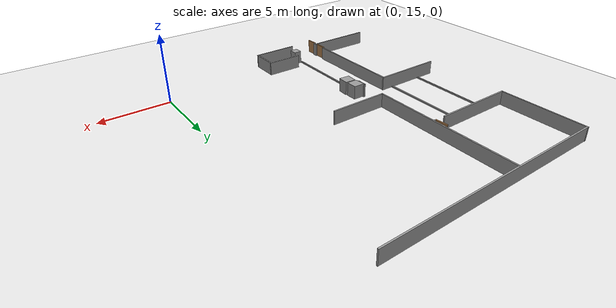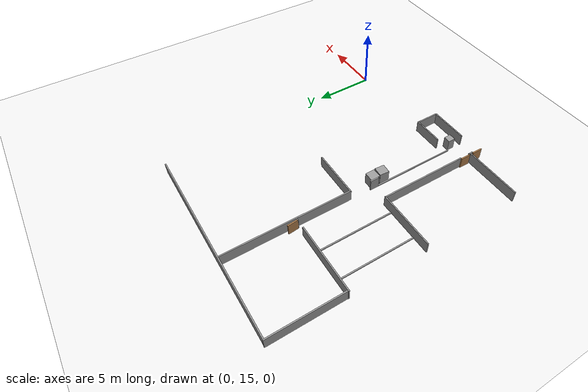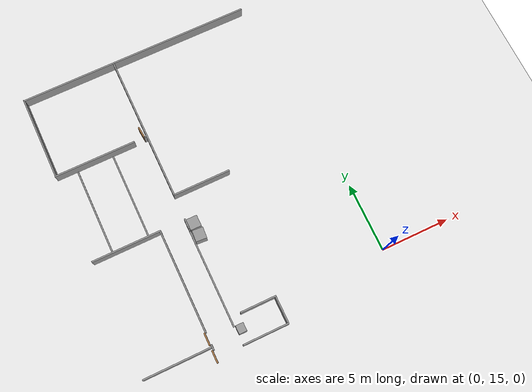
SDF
<sdf version="1.6">
 <world name="default">
  <model name="ground_plane">
   <static>1</static>
   <link name="link">
    <collision name="collision">
     <geometry><plane><normal>0 0 1</normal><size>100 100</size></plane></geometry>
     <surface><friction><ode><mu>100</mu><mu2>50</mu2></ode></friction></surface>
    </collision>
    <visual name="visual">
     <cast_shadows>0</cast_shadows>
     <geometry><plane><normal>0 0 1</normal><size>100 100</size></plane></geometry>
     <material>
      <script><uri>file://media/materials/scripts/gazebo.material</uri><name>Gazebo/WhiteGlow</name></script>
     </material>
    </visual>
   </link>
  </model>
  <model name="L81">
   <link name="link_1">
    <pose>6.1848 40.6724 0.017394 0 -0 0</pose>
    <inertial>
     <mass>0.639519</mass>
     <inertia>
      <ixx>0.0882035</ixx>
      <ixy>0</ixy>
      <ixz>0</ixz>
      <iyy>0.086567</iyy>
      <iyz>0</iyz>
      <izz>0.068184</izz>
     </inertia>
    </inertial>
    <visual name="visual">
     <geometry><box><size>0.790159 0.809357 1</size></box></geometry>
     <material>
      <lighting>1</lighting>
      <script><uri>file://media/materials/scripts/gazebo.material</uri><name>Gazebo/Grey</name></script>
      <shader type="pixel"><normal_map>__default__</normal_map></shader>
      <ambient>0.3 0.3 0.3 1</ambient>
      <diffuse>0.7 0.7 0.7 1</diffuse>
      <specular>0.01 0.01 0.01 1</specular>
      <emissive>0 0 0 1</emissive>
     </material>
    </visual>
    <collision name="collision">
     <geometry><box><size>0.790159 0.809357 1</size></box></geometry>
     <surface>
      <friction>
       <ode><mu>1</mu><mu2>1</mu2><fdir1>0 0 0</fdir1><slip1>0</slip1><slip2>0</slip2></ode>
       <torsional>
        <coefficient>1</coefficient>
        <patch_radius>0</patch_radius>
        <surface_radius>0</surface_radius>
        <use_patch_radius>1</use_patch_radius>
        <ode><slip>0</slip></ode>
       </torsional>
      </friction>
      <bounce><restitution_coefficient>0</restitution_coefficient><threshold>1e+06</threshold></bounce>
      <contact>
       <collide_without_contact>0</collide_without_contact>
       <collide_without_contact_bitmask>1</collide_without_contact_bitmask>
       <collide_bitmask>1</collide_bitmask>
       <ode>
        <soft_cfm>0</soft_cfm>
        <soft_erp>0.2</soft_erp>
        <kp>1e+13</kp>
        <kd>1</kd>
        <max_vel>0.01</max_vel>
        <min_depth>0</min_depth>
       </ode>
       <bullet>
        <split_impulse>1</split_impulse>
        <split_impulse_penetration_threshold>-0.01</split_impulse_penetration_threshold>
        <soft_cfm>0</soft_cfm>
        <soft_erp>0.2</soft_erp>
        <kp>1e+13</kp>
        <kd>1</kd>
       </bullet>
      </contact>
     </surface>
    </collision>
   </link>
   <link name="link_1_clone">
    <pose>6.20714 39.7777 0.017394 -0 -0 -0.068112</pose>
    <inertial>
     <mass>0.639519</mass>
     <inertia>
      <ixx>0.0882035</ixx>
      <ixy>0</ixy>
      <ixz>0</ixz>
      <iyy>0.086567</iyy>
      <iyz>0</iyz>
      <izz>0.068184</izz>
     </inertia>
    </inertial>
    <visual name="visual">
     <geometry><box><size>0.790159 0.809357 1</size></box></geometry>
     <material>
      <lighting>1</lighting>
      <script><uri>file://media/materials/scripts/gazebo.material</uri><name>Gazebo/Grey</name></script>
      <shader type="pixel"><normal_map>__default__</normal_map></shader>
      <ambient>0.3 0.3 0.3 1</ambient>
      <diffuse>0.7 0.7 0.7 1</diffuse>
      <specular>0.01 0.01 0.01 1</specular>
      <emissive>0 0 0 1</emissive>
     </material>
    </visual>
    <collision name="collision">
     <geometry><box><size>0.790159 0.809357 1</size></box></geometry>
     <surface>
      <friction>
       <ode><mu>1</mu><mu2>1</mu2><fdir1>0 0 0</fdir1><slip1>0</slip1><slip2>0</slip2></ode>
       <torsional>
        <coefficient>1</coefficient>
        <patch_radius>0</patch_radius>
        <surface_radius>0</surface_radius>
        <use_patch_radius>1</use_patch_radius>
        <ode><slip>0</slip></ode>
       </torsional>
      </friction>
      <bounce><restitution_coefficient>0</restitution_coefficient><threshold>1e+06</threshold></bounce>
      <contact>
       <collide_without_contact>0</collide_without_contact>
       <collide_without_contact_bitmask>1</collide_without_contact_bitmask>
       <collide_bitmask>1</collide_bitmask>
       <ode>
        <soft_cfm>0</soft_cfm>
        <soft_erp>0.2</soft_erp>
        <kp>1e+13</kp>
        <kd>1</kd>
        <max_vel>0.01</max_vel>
        <min_depth>0</min_depth>
       </ode>
       <bullet>
        <split_impulse>1</split_impulse>
        <split_impulse_penetration_threshold>-0.01</split_impulse_penetration_threshold>
        <soft_cfm>0</soft_cfm>
        <soft_erp>0.2</soft_erp>
        <kp>1e+13</kp>
        <kd>1</kd>
       </bullet>
      </contact>
     </surface>
    </collision>
   </link>
   <link name="link_clone_0_clone_0_clone_2">
    <pose>3.89392 37.3914 -0 0 -0 0</pose>
    <inertial>
     <mass>0.417724</mass>
     <inertia>
      <ixx>1.94639</ixx>
      <ixy>0</ixy>
      <ixz>0</ixz>
      <iyy>0.0351584</iyy>
      <iyz>0</iyz>
      <izz>1.91193</izz>
     </inertia>
    </inertial>
    <visual name="visual">
     <geometry><box><size>0.1 7.41041 1</size></box></geometry>
     <material>
      <script><name>Gazebo/Grey</name><uri>file://media/materials/scripts/gazebo.material</uri></script>
      <shader type="pixel"><normal_map>__default__</normal_map></shader>
      <ambient>0.3 0.3 0.3 1</ambient>
      <diffuse>0.7 0.7 0.7 1</diffuse>
      <specular>0.01 0.01 0.01 1</specular>
      <emissive>0 0 0 1</emissive>
     </material>
    </visual>
    <collision name="collision">
     <geometry><box><size>0.1 7.41041 1</size></box></geometry>
     <surface>
      <friction>
       <ode><mu>1</mu><mu2>1</mu2><fdir1>0 0 0</fdir1><slip1>0</slip1><slip2>0</slip2></ode>
       <torsional>
        <coefficient>1</coefficient>
        <patch_radius>0</patch_radius>
        <surface_radius>0</surface_radius>
        <use_patch_radius>1</use_patch_radius>
        <ode><slip>0</slip></ode>
       </torsional>
      </friction>
      <bounce><restitution_coefficient>0</restitution_coefficient><threshold>1e+06</threshold></bounce>
      <contact>
       <collide_without_contact>0</collide_without_contact>
       <collide_without_contact_bitmask>1</collide_without_contact_bitmask>
       <collide_bitmask>1</collide_bitmask>
       <ode>
        <soft_cfm>0</soft_cfm>
        <soft_erp>0.2</soft_erp>
        <kp>1e+13</kp>
        <kd>1</kd>
        <max_vel>0.01</max_vel>
        <min_depth>0</min_depth>
       </ode>
       <bullet>
        <split_impulse>1</split_impulse>
        <split_impulse_penetration_threshold>-0.01</split_impulse_penetration_threshold>
        <soft_cfm>0</soft_cfm>
        <soft_erp>0.2</soft_erp>
        <kp>1e+13</kp>
        <kd>1</kd>
       </bullet>
      </contact>
     </surface>
    </collision>
   </link>
   <link name="link_clone_0_clone_0_clone_3">
    <pose>3.90051 32.6454 0 0 -0 0</pose>
    <inertial>
     <mass>0.0215676</mass>
     <inertia>
      <ixx>0.0020604</ixx>
      <ixy>0</ixy>
      <ixz>0</ixz>
      <iyy>0.00181527</iyy>
      <iyz>0</iyz>
      <izz>0.000281077</izz>
     </inertia>
    </inertial>
    <visual name="visual">
     <geometry><box><size>0.1 0.382608 1</size></box></geometry>
     <material>
      <script><name>Gazebo/Grey</name><uri>file://media/materials/scripts/gazebo.material</uri></script>
      <shader type="pixel"><normal_map>__default__</normal_map></shader>
      <ambient>0.3 0.3 0.3 1</ambient>
      <diffuse>0.7 0.7 0.7 1</diffuse>
      <specular>0.01 0.01 0.01 1</specular>
      <emissive>0 0 0 1</emissive>
     </material>
    </visual>
    <collision name="collision">
     <geometry><box><size>0.1 0.382608 1</size></box></geometry>
     <surface>
      <friction>
       <ode><mu>1</mu><mu2>1</mu2><fdir1>0 0 0</fdir1><slip1>0</slip1><slip2>0</slip2></ode>
       <torsional>
        <coefficient>1</coefficient>
        <patch_radius>0</patch_radius>
        <surface_radius>0</surface_radius>
        <use_patch_radius>1</use_patch_radius>
        <ode><slip>0</slip></ode>
       </torsional>
      </friction>
      <bounce><restitution_coefficient>0</restitution_coefficient><threshold>1e+06</threshold></bounce>
      <contact>
       <collide_without_contact>0</collide_without_contact>
       <collide_without_contact_bitmask>1</collide_without_contact_bitmask>
       <collide_bitmask>1</collide_bitmask>
       <ode>
        <soft_cfm>0</soft_cfm>
        <soft_erp>0.2</soft_erp>
        <kp>1e+13</kp>
        <kd>1</kd>
        <max_vel>0.01</max_vel>
        <min_depth>0</min_depth>
       </ode>
       <bullet>
        <split_impulse>1</split_impulse>
        <split_impulse_penetration_threshold>-0.01</split_impulse_penetration_threshold>
        <soft_cfm>0</soft_cfm>
        <soft_erp>0.2</soft_erp>
        <kp>1e+13</kp>
        <kd>1</kd>
       </bullet>
      </contact>
     </surface>
    </collision>
   </link>
   <link name="link_clone_0_clone_clone">
    <pose>-1.07086 50.8097 0 0 -0 0</pose>
    <inertial>
     <mass>1</mass>
     <inertia>
      <ixx>0.166667</ixx>
      <ixy>0</ixy>
      <ixz>0</ixz>
      <iyy>0.166667</iyy>
      <iyz>0</iyz>
      <izz>0.166667</izz>
     </inertia>
    </inertial>
    <visual name="visual">
     <geometry><box><size>0.1 6.12 1</size></box></geometry>
     <material>
      <script><name>Gazebo/Grey</name><uri>file://media/materials/scripts/gazebo.material</uri></script>
      <shader type="pixel"><normal_map>__default__</normal_map></shader>
      <ambient>0.3 0.3 0.3 1</ambient>
      <diffuse>0.7 0.7 0.7 1</diffuse>
      <specular>0.01 0.01 0.01 1</specular>
      <emissive>0 0 0 1</emissive>
     </material>
    </visual>
    <collision name="collision">
     <geometry><box><size>0.1 6.12 1</size></box></geometry>
     <surface>
      <friction>
       <ode><mu>1</mu><mu2>1</mu2><fdir1>0 0 0</fdir1><slip1>0</slip1><slip2>0</slip2></ode>
       <torsional>
        <coefficient>1</coefficient>
        <patch_radius>0</patch_radius>
        <surface_radius>0</surface_radius>
        <use_patch_radius>1</use_patch_radius>
        <ode><slip>0</slip></ode>
       </torsional>
      </friction>
      <bounce><restitution_coefficient>0</restitution_coefficient><threshold>1e+06</threshold></bounce>
      <contact>
       <collide_without_contact>0</collide_without_contact>
       <collide_without_contact_bitmask>1</collide_without_contact_bitmask>
       <collide_bitmask>1</collide_bitmask>
       <ode>
        <soft_cfm>0</soft_cfm>
        <soft_erp>0.2</soft_erp>
        <kp>1e+13</kp>
        <kd>1</kd>
        <max_vel>0.01</max_vel>
        <min_depth>0</min_depth>
       </ode>
       <bullet>
        <split_impulse>1</split_impulse>
        <split_impulse_penetration_threshold>-0.01</split_impulse_penetration_threshold>
        <soft_cfm>0</soft_cfm>
        <soft_erp>0.2</soft_erp>
        <kp>1e+13</kp>
        <kd>1</kd>
       </bullet>
      </contact>
     </surface>
    </collision>
   </link>
   <link name="link_clone_0_clone_clone_0">
    <pose>5.76701 48.3737 -0 0 -0 0</pose>
    <inertial>
     <mass>1</mass>
     <inertia>
      <ixx>0.166667</ixx>
      <ixy>0</ixy>
      <ixz>0</ixz>
      <iyy>0.166667</iyy>
      <iyz>0</iyz>
      <izz>0.166667</izz>
     </inertia>
    </inertial>
    <visual name="visual">
     <geometry><box><size>0.1 10.82 1</size></box></geometry>
     <material>
      <script><name>Gazebo/Grey</name><uri>file://media/materials/scripts/gazebo.material</uri></script>
      <shader type="pixel"><normal_map>__default__</normal_map></shader>
      <ambient>0.3 0.3 0.3 1</ambient>
      <diffuse>0.7 0.7 0.7 1</diffuse>
      <specular>0.01 0.01 0.01 1</specular>
      <emissive>0 0 0 1</emissive>
     </material>
    </visual>
    <collision name="collision">
     <geometry><box><size>0.1 10.82 1</size></box></geometry>
     <surface>
      <friction>
       <ode><mu>1</mu><mu2>1</mu2><fdir1>0 0 0</fdir1><slip1>0</slip1><slip2>0</slip2></ode>
       <torsional>
        <coefficient>1</coefficient>
        <patch_radius>0</patch_radius>
        <surface_radius>0</surface_radius>
        <use_patch_radius>1</use_patch_radius>
        <ode><slip>0</slip></ode>
       </torsional>
      </friction>
      <bounce><restitution_coefficient>0</restitution_coefficient><threshold>1e+06</threshold></bounce>
      <contact>
       <collide_without_contact>0</collide_without_contact>
       <collide_without_contact_bitmask>1</collide_without_contact_bitmask>
       <collide_bitmask>1</collide_bitmask>
       <ode>
        <soft_cfm>0</soft_cfm>
        <soft_erp>0.2</soft_erp>
        <kp>1e+13</kp>
        <kd>1</kd>
        <max_vel>0.01</max_vel>
        <min_depth>0</min_depth>
       </ode>
       <bullet>
        <split_impulse>1</split_impulse>
        <split_impulse_penetration_threshold>-0.01</split_impulse_penetration_threshold>
        <soft_cfm>0</soft_cfm>
        <soft_erp>0.2</soft_erp>
        <kp>1e+13</kp>
        <kd>1</kd>
       </bullet>
      </contact>
     </surface>
    </collision>
   </link>
   <link name="link_clone_0_clone_clone_0_clone_clone_clone_1_clone_0_clone_0">
    <pose>5.73871 40.8124 0 0 -0 0</pose>
    <inertial>
     <mass>0.262825</mass>
     <inertia>
      <ixx>0.0337428</ixx>
      <ixy>0</ixy>
      <ixz>0</ixz>
      <iyy>0.0221211</iyy>
      <iyz>0</iyz>
      <izz>0.0120597</izz>
     </inertia>
    </inertial>
    <visual name="visual">
     <geometry><box><size>0.1 0.735267 1</size></box></geometry>
     <material>
      <script><name>Gazebo/Grey</name><uri>file://media/materials/scripts/gazebo.material</uri></script>
      <shader type="pixel"><normal_map>__default__</normal_map></shader>
      <ambient>0.3 0.3 0.3 1</ambient>
      <diffuse>0.7 0.7 0.7 1</diffuse>
      <specular>0.01 0.01 0.01 1</specular>
      <emissive>0 0 0 1</emissive>
     </material>
    </visual>
    <collision name="collision">
     <geometry><box><size>0.1 0.735267 1</size></box></geometry>
     <surface>
      <friction>
       <ode><mu>1</mu><mu2>1</mu2><fdir1>0 0 0</fdir1><slip1>0</slip1><slip2>0</slip2></ode>
       <torsional>
        <coefficient>1</coefficient>
        <patch_radius>0</patch_radius>
        <surface_radius>0</surface_radius>
        <use_patch_radius>1</use_patch_radius>
        <ode><slip>0</slip></ode>
       </torsional>
      </friction>
      <bounce><restitution_coefficient>0</restitution_coefficient><threshold>1e+06</threshold></bounce>
      <contact>
       <collide_without_contact>0</collide_without_contact>
       <collide_without_contact_bitmask>1</collide_without_contact_bitmask>
       <collide_bitmask>1</collide_bitmask>
       <ode>
        <soft_cfm>0</soft_cfm>
        <soft_erp>0.2</soft_erp>
        <kp>1e+13</kp>
        <kd>1</kd>
        <max_vel>0.01</max_vel>
        <min_depth>0</min_depth>
       </ode>
       <bullet>
        <split_impulse>1</split_impulse>
        <split_impulse_penetration_threshold>-0.01</split_impulse_penetration_threshold>
        <soft_cfm>0</soft_cfm>
        <soft_erp>0.2</soft_erp>
        <kp>1e+13</kp>
        <kd>1</kd>
       </bullet>
      </contact>
     </surface>
    </collision>
   </link>
   <link name="link_clone_0_clone_clone_0_clone_clone_clone_1_clone_0_clone_clone_clone">
    <pose>5.73673 36.8477 -0.459597 0 -0 0</pose>
    <inertial>
     <mass>2.56764</mass>
     <inertia><ixx>11.2543</ixx><ixy>0</ixy><ixz>0</ixz><iyy>0.21611</iyy><iyz>0</iyz><izz>11.0424</izz></inertia>
    </inertial>
    <visual name="visual">
     <geometry><box><size>0.1 7.18313 0.1</size></box></geometry>
     <material>
      <script><name>Gazebo/Grey</name><uri>file://media/materials/scripts/gazebo.material</uri></script>
      <shader type="pixel"><normal_map>__default__</normal_map></shader>
      <ambient>0.3 0.3 0.3 1</ambient>
      <diffuse>0.7 0.7 0.7 1</diffuse>
      <specular>0.01 0.01 0.01 1</specular>
      <emissive>0 0 0 1</emissive>
     </material>
    </visual>
    <collision name="collision">
     <geometry><box><size>0.1 7.18313 0.1</size></box></geometry>
     <surface>
      <friction>
       <ode><mu>1</mu><mu2>1</mu2><fdir1>0 0 0</fdir1><slip1>0</slip1><slip2>0</slip2></ode>
       <torsional>
        <coefficient>1</coefficient>
        <patch_radius>0</patch_radius>
        <surface_radius>0</surface_radius>
        <use_patch_radius>1</use_patch_radius>
        <ode><slip>0</slip></ode>
       </torsional>
      </friction>
      <bounce><restitution_coefficient>0</restitution_coefficient><threshold>1e+06</threshold></bounce>
      <contact>
       <collide_without_contact>0</collide_without_contact>
       <collide_without_contact_bitmask>1</collide_without_contact_bitmask>
       <collide_bitmask>1</collide_bitmask>
       <ode>
        <soft_cfm>0</soft_cfm>
        <soft_erp>0.2</soft_erp>
        <kp>1e+13</kp>
        <kd>1</kd>
        <max_vel>0.01</max_vel>
        <min_depth>0</min_depth>
       </ode>
       <bullet>
        <split_impulse>1</split_impulse>
        <split_impulse_penetration_threshold>-0.01</split_impulse_penetration_threshold>
        <soft_cfm>0</soft_cfm>
        <soft_erp>0.2</soft_erp>
        <kp>1e+13</kp>
        <kd>1</kd>
       </bullet>
      </contact>
     </surface>
    </collision>
   </link>
   <link name="link_clone_0_clone_clone_0_clone_clone_clone_1_clone_0_clone_clone_clone_0">
    <pose>3.02058 44.4084 -0.453071 0 -0 0</pose>
    <inertial>
     <mass>2.31092</mass>
     <inertia><ixx>8.24145</ixx><ixy>0</ixy><ixz>0</ixz><iyy>0.194503</iyy><iyz>0</iyz><izz>8.0508</izz></inertia>
    </inertial>
    <visual name="visual">
     <geometry><box><size>0.1 6.46495 0.1</size></box></geometry>
     <material>
      <script><name>Gazebo/Grey</name><uri>file://media/materials/scripts/gazebo.material</uri></script>
      <shader type="pixel"><normal_map>__default__</normal_map></shader>
      <ambient>0.3 0.3 0.3 1</ambient>
      <diffuse>0.7 0.7 0.7 1</diffuse>
      <specular>0.01 0.01 0.01 1</specular>
      <emissive>0 0 0 1</emissive>
     </material>
    </visual>
    <collision name="collision">
     <geometry><box><size>0.1 6.46495 0.1</size></box></geometry>
     <surface>
      <friction>
       <ode><mu>1</mu><mu2>1</mu2><fdir1>0 0 0</fdir1><slip1>0</slip1><slip2>0</slip2></ode>
       <torsional>
        <coefficient>1</coefficient>
        <patch_radius>0</patch_radius>
        <surface_radius>0</surface_radius>
        <use_patch_radius>1</use_patch_radius>
        <ode><slip>0</slip></ode>
       </torsional>
      </friction>
      <bounce><restitution_coefficient>0</restitution_coefficient><threshold>1e+06</threshold></bounce>
      <contact>
       <collide_without_contact>0</collide_without_contact>
       <collide_without_contact_bitmask>1</collide_without_contact_bitmask>
       <collide_bitmask>1</collide_bitmask>
       <ode>
        <soft_cfm>0</soft_cfm>
        <soft_erp>0.2</soft_erp>
        <kp>1e+13</kp>
        <kd>1</kd>
        <max_vel>0.01</max_vel>
        <min_depth>0</min_depth>
       </ode>
       <bullet>
        <split_impulse>1</split_impulse>
        <split_impulse_penetration_threshold>-0.01</split_impulse_penetration_threshold>
        <soft_cfm>0</soft_cfm>
        <soft_erp>0.2</soft_erp>
        <kp>1e+13</kp>
        <kd>1</kd>
       </bullet>
      </contact>
     </surface>
    </collision>
   </link>
   <link name="link_clone_0_clone_clone_0_clone_clone_clone_1_clone_0_clone_clone_clone_0_clone">
    <pose>0.350616 44.4083 -0.455154 0 -0 0</pose>
    <inertial>
     <mass>2.31092</mass>
     <inertia><ixx>8.24145</ixx><ixy>0</ixy><ixz>0</ixz><iyy>0.194503</iyy><iyz>0</iyz><izz>8.0508</izz></inertia>
    </inertial>
    <visual name="visual">
     <geometry><box><size>0.1 6.46495 0.1</size></box></geometry>
     <material>
      <script><name>Gazebo/Grey</name><uri>file://media/materials/scripts/gazebo.material</uri></script>
      <shader type="pixel"><normal_map>__default__</normal_map></shader>
      <ambient>0.3 0.3 0.3 1</ambient>
      <diffuse>0.7 0.7 0.7 1</diffuse>
      <specular>0.01 0.01 0.01 1</specular>
      <emissive>0 0 0 1</emissive>
     </material>
    </visual>
    <collision name="collision">
     <geometry><box><size>0.1 6.46495 0.1</size></box></geometry>
     <surface>
      <friction>
       <ode><mu>1</mu><mu2>1</mu2><fdir1>0 0 0</fdir1><slip1>0</slip1><slip2>0</slip2></ode>
       <torsional>
        <coefficient>1</coefficient>
        <patch_radius>0</patch_radius>
        <surface_radius>0</surface_radius>
        <use_patch_radius>1</use_patch_radius>
        <ode><slip>0</slip></ode>
       </torsional>
      </friction>
      <bounce><restitution_coefficient>0</restitution_coefficient><threshold>1e+06</threshold></bounce>
      <contact>
       <collide_without_contact>0</collide_without_contact>
       <collide_without_contact_bitmask>1</collide_without_contact_bitmask>
       <collide_bitmask>1</collide_bitmask>
       <ode>
        <soft_cfm>0</soft_cfm>
        <soft_erp>0.2</soft_erp>
        <kp>1e+13</kp>
        <kd>1</kd>
        <max_vel>0.01</max_vel>
        <min_depth>0</min_depth>
       </ode>
       <bullet>
        <split_impulse>1</split_impulse>
        <split_impulse_penetration_threshold>-0.01</split_impulse_penetration_threshold>
        <soft_cfm>0</soft_cfm>
        <soft_erp>0.2</soft_erp>
        <kp>1e+13</kp>
        <kd>1</kd>
       </bullet>
      </contact>
     </surface>
    </collision>
   </link>
   <link name="link_clone_0_clone_clone_0_clone_clone_clone_1_clone_1_clone_clone_clone_clone">
    <pose>9.0385 32.9029 0 0 -0 0</pose>
    <inertial>
     <mass>0.280797</mass>
     <inertia>
      <ixx>0.103765</ixx>
      <ixy>0</ixy>
      <ixz>0</ixz>
      <iyy>0.0236337</iyy>
      <iyz>0</iyz>
      <izz>0.0805993</izz>
     </inertia>
    </inertial>
    <visual name="visual">
     <geometry><box><size>0.1 1.85323 1</size></box></geometry>
     <material>
      <script><name>Gazebo/Grey</name><uri>file://media/materials/scripts/gazebo.material</uri></script>
      <shader type="pixel"><normal_map>__default__</normal_map></shader>
      <ambient>0.3 0.3 0.3 1</ambient>
      <diffuse>0.7 0.7 0.7 1</diffuse>
      <specular>0.01 0.01 0.01 1</specular>
      <emissive>0 0 0 1</emissive>
     </material>
    </visual>
    <collision name="collision">
     <geometry><box><size>0.1 1.85323 1</size></box></geometry>
     <surface>
      <friction>
       <ode><mu>1</mu><mu2>1</mu2><fdir1>0 0 0</fdir1><slip1>0</slip1><slip2>0</slip2></ode>
       <torsional>
        <coefficient>1</coefficient>
        <patch_radius>0</patch_radius>
        <surface_radius>0</surface_radius>
        <use_patch_radius>1</use_patch_radius>
        <ode><slip>0</slip></ode>
       </torsional>
      </friction>
      <bounce><restitution_coefficient>0</restitution_coefficient><threshold>1e+06</threshold></bounce>
      <contact>
       <collide_without_contact>0</collide_without_contact>
       <collide_without_contact_bitmask>1</collide_without_contact_bitmask>
       <collide_bitmask>1</collide_bitmask>
       <ode>
        <soft_cfm>0</soft_cfm>
        <soft_erp>0.2</soft_erp>
        <kp>1e+13</kp>
        <kd>1</kd>
        <max_vel>0.01</max_vel>
        <min_depth>0</min_depth>
       </ode>
       <bullet>
        <split_impulse>1</split_impulse>
        <split_impulse_penetration_threshold>-0.01</split_impulse_penetration_threshold>
        <soft_cfm>0</soft_cfm>
        <soft_erp>0.2</soft_erp>
        <kp>1e+13</kp>
        <kd>1</kd>
       </bullet>
      </contact>
     </surface>
    </collision>
   </link>
   <link name="link_clone_0_clone_clone_0_clone_clone_clone_2_clone">
    <pose>3.79519 32.0379 -0 0 -0 0</pose>
    <inertial>
     <mass>1.01517</mass>
     <inertia><ixx>5.4708</ixx><ixy>0</ixy><ixz>0</ixz><iyy>0.0854436</iyy><iyz>0</iyz><izz>5.38705</izz></inertia>
    </inertial>
    <visual name="visual">
     <geometry><box><size>0.1 0.87 1</size></box></geometry>
     <material>
      <script><name>Gazebo/Wood</name><uri>file://media/materials/scripts/gazebo.material</uri></script>
      <shader type="pixel"><normal_map>__default__</normal_map></shader>
      <ambient>0.3 0.3 0.3 1</ambient>
      <diffuse>0.7 0.7 0.7 1</diffuse>
      <specular>0.01 0.01 0.01 1</specular>
      <emissive>0 0 0 1</emissive>
     </material>
    </visual>
    <collision name="collision">
     <geometry><box><size>0.1 0.87 1</size></box></geometry>
     <surface>
      <friction>
       <ode><mu>1</mu><mu2>1</mu2><fdir1>0 0 0</fdir1><slip1>0</slip1><slip2>0</slip2></ode>
       <torsional>
        <coefficient>1</coefficient>
        <patch_radius>0</patch_radius>
        <surface_radius>0</surface_radius>
        <use_patch_radius>1</use_patch_radius>
        <ode><slip>0</slip></ode>
       </torsional>
      </friction>
      <bounce><restitution_coefficient>0</restitution_coefficient><threshold>1e+06</threshold></bounce>
      <contact>
       <collide_without_contact>0</collide_without_contact>
       <collide_without_contact_bitmask>1</collide_without_contact_bitmask>
       <collide_bitmask>1</collide_bitmask>
       <ode>
        <soft_cfm>0</soft_cfm>
        <soft_erp>0.2</soft_erp>
        <kp>1e+13</kp>
        <kd>1</kd>
        <max_vel>0.01</max_vel>
        <min_depth>0</min_depth>
       </ode>
       <bullet>
        <split_impulse>1</split_impulse>
        <split_impulse_penetration_threshold>-0.01</split_impulse_penetration_threshold>
        <soft_cfm>0</soft_cfm>
        <soft_erp>0.2</soft_erp>
        <kp>1e+13</kp>
        <kd>1</kd>
       </bullet>
      </contact>
     </surface>
    </collision>
   </link>
   <link name="link_clone_0_clone_clone_0_clone_clone_clone_2_clone_clone">
    <pose>3.7954 33.2651 -0 0 -0 0</pose>
    <inertial>
     <mass>1.01517</mass>
     <inertia><ixx>5.4708</ixx><ixy>0</ixy><ixz>0</ixz><iyy>0.0854436</iyy><iyz>0</iyz><izz>5.38705</izz></inertia>
    </inertial>
    <visual name="visual">
     <geometry><box><size>0.1 0.87 1</size></box></geometry>
     <material>
      <script><name>Gazebo/Wood</name><uri>file://media/materials/scripts/gazebo.material</uri></script>
      <shader type="pixel"><normal_map>__default__</normal_map></shader>
      <ambient>0.3 0.3 0.3 1</ambient>
      <diffuse>0.7 0.7 0.7 1</diffuse>
      <specular>0.01 0.01 0.01 1</specular>
      <emissive>0 0 0 1</emissive>
     </material>
    </visual>
    <collision name="collision">
     <geometry><box><size>0.1 0.87 1</size></box></geometry>
     <surface>
      <friction>
       <ode><mu>1</mu><mu2>1</mu2><fdir1>0 0 0</fdir1><slip1>0</slip1><slip2>0</slip2></ode>
       <torsional>
        <coefficient>1</coefficient>
        <patch_radius>0</patch_radius>
        <surface_radius>0</surface_radius>
        <use_patch_radius>1</use_patch_radius>
        <ode><slip>0</slip></ode>
       </torsional>
      </friction>
      <bounce><restitution_coefficient>0</restitution_coefficient><threshold>1e+06</threshold></bounce>
      <contact>
       <collide_without_contact>0</collide_without_contact>
       <collide_without_contact_bitmask>1</collide_without_contact_bitmask>
       <collide_bitmask>1</collide_bitmask>
       <ode>
        <soft_cfm>0</soft_cfm>
        <soft_erp>0.2</soft_erp>
        <kp>1e+13</kp>
        <kd>1</kd>
        <max_vel>0.01</max_vel>
        <min_depth>0</min_depth>
       </ode>
       <bullet>
        <split_impulse>1</split_impulse>
        <split_impulse_penetration_threshold>-0.01</split_impulse_penetration_threshold>
        <soft_cfm>0</soft_cfm>
        <soft_erp>0.2</soft_erp>
        <kp>1e+13</kp>
        <kd>1</kd>
       </bullet>
      </contact>
     </surface>
    </collision>
   </link>
   <link name="link_clone_0_clone_clone_0_clone_clone_clone_2_clone_clone_0">
    <pose>6.10303 32.9506 0 0 -0 0</pose>
    <inertial>
     <mass>4.04511</mass>
     <inertia>
      <ixx>0.462473</ixx>
      <ixy>0</ixy>
      <ixz>0</ixz>
      <iyy>0.446013</iyy>
      <iyz>0</iyz>
      <izz>0.234301</izz>
     </inertia>
    </inertial>
    <visual name="visual">
     <geometry><box><size>0.568435 0.609874 1</size></box></geometry>
     <material>
      <script><name>Gazebo/Grey</name><uri>file://media/materials/scripts/gazebo.material</uri></script>
      <shader type="pixel"><normal_map>__default__</normal_map></shader>
      <ambient>0.3 0.3 0.3 1</ambient>
      <diffuse>0.7 0.7 0.7 1</diffuse>
      <specular>0.01 0.01 0.01 1</specular>
      <emissive>0 0 0 1</emissive>
     </material>
    </visual>
    <collision name="collision">
     <geometry><box><size>0.568435 0.609874 1</size></box></geometry>
     <surface>
      <friction>
       <ode><mu>1</mu><mu2>1</mu2><fdir1>0 0 0</fdir1><slip1>0</slip1><slip2>0</slip2></ode>
       <torsional>
        <coefficient>1</coefficient>
        <patch_radius>0</patch_radius>
        <surface_radius>0</surface_radius>
        <use_patch_radius>1</use_patch_radius>
        <ode><slip>0</slip></ode>
       </torsional>
      </friction>
      <bounce><restitution_coefficient>0</restitution_coefficient><threshold>1e+06</threshold></bounce>
      <contact>
       <collide_without_contact>0</collide_without_contact>
       <collide_without_contact_bitmask>1</collide_without_contact_bitmask>
       <collide_bitmask>1</collide_bitmask>
       <ode>
        <soft_cfm>0</soft_cfm>
        <soft_erp>0.2</soft_erp>
        <kp>1e+13</kp>
        <kd>1</kd>
        <max_vel>0.01</max_vel>
        <min_depth>0</min_depth>
       </ode>
       <bullet>
        <split_impulse>1</split_impulse>
        <split_impulse_penetration_threshold>-0.01</split_impulse_penetration_threshold>
        <soft_cfm>0</soft_cfm>
        <soft_erp>0.2</soft_erp>
        <kp>1e+13</kp>
        <kd>1</kd>
       </bullet>
      </contact>
     </surface>
    </collision>
   </link>
   <link name="link_clone_0_clone_clone_0_clone_clone_clone_2_clone_clone_clone">
    <pose>5.52582 48.1147 -0 0 -0 0.089586</pose>
    <inertial>
     <mass>1.01517</mass>
     <inertia><ixx>5.4708</ixx><ixy>0</ixy><ixz>0</ixz><iyy>0.0854436</iyy><iyz>0</iyz><izz>5.38705</izz></inertia>
    </inertial>
    <visual name="visual">
     <geometry><box><size>0.1 0.87 1</size></box></geometry>
     <material>
      <script><name>Gazebo/Wood</name><uri>file://media/materials/scripts/gazebo.material</uri></script>
      <shader type="pixel"><normal_map>__default__</normal_map></shader>
      <ambient>0.3 0.3 0.3 1</ambient>
      <diffuse>0.7 0.7 0.7 1</diffuse>
      <specular>0.01 0.01 0.01 1</specular>
      <emissive>0 0 0 1</emissive>
     </material>
    </visual>
    <collision name="collision">
     <geometry><box><size>0.1 0.87 1</size></box></geometry>
     <surface>
      <friction>
       <ode><mu>1</mu><mu2>1</mu2><fdir1>0 0 0</fdir1><slip1>0</slip1><slip2>0</slip2></ode>
       <torsional>
        <coefficient>1</coefficient>
        <patch_radius>0</patch_radius>
        <surface_radius>0</surface_radius>
        <use_patch_radius>1</use_patch_radius>
        <ode><slip>0</slip></ode>
       </torsional>
      </friction>
      <bounce><restitution_coefficient>0</restitution_coefficient><threshold>1e+06</threshold></bounce>
      <contact>
       <collide_without_contact>0</collide_without_contact>
       <collide_without_contact_bitmask>1</collide_without_contact_bitmask>
       <collide_bitmask>1</collide_bitmask>
       <ode>
        <soft_cfm>0</soft_cfm>
        <soft_erp>0.2</soft_erp>
        <kp>1e+13</kp>
        <kd>1</kd>
        <max_vel>0.01</max_vel>
        <min_depth>0</min_depth>
       </ode>
       <bullet>
        <split_impulse>1</split_impulse>
        <split_impulse_penetration_threshold>-0.01</split_impulse_penetration_threshold>
        <soft_cfm>0</soft_cfm>
        <soft_erp>0.2</soft_erp>
        <kp>1e+13</kp>
        <kd>1</kd>
       </bullet>
      </contact>
     </surface>
    </collision>
   </link>
   <link name="link_clone_clone_clone">
    <pose>1.83756 47.6926 -0 0 -0 0</pose>
    <inertial>
     <mass>4.16318</mass>
     <inertia><ixx>0.350401</ixx><ixy>0</ixy><ixz>0</ixz><iyy>12.643</iyy><iyz>0</iyz><izz>12.2996</izz></inertia>
    </inertial>
    <visual name="visual">
     <geometry><box><size>5.95335 0.1 1</size></box></geometry>
     <material>
      <script><name>Gazebo/Grey</name><uri>file://media/materials/scripts/gazebo.material</uri></script>
      <shader type="pixel"><normal_map>__default__</normal_map></shader>
      <ambient>0.3 0.3 0.3 1</ambient>
      <diffuse>0.7 0.7 0.7 1</diffuse>
      <specular>0.01 0.01 0.01 1</specular>
      <emissive>0 0 0 1</emissive>
     </material>
    </visual>
    <collision name="collision">
     <geometry><box><size>5.95335 0.1 1</size></box></geometry>
     <surface>
      <friction>
       <ode><mu>1</mu><mu2>1</mu2><fdir1>0 0 0</fdir1><slip1>0</slip1><slip2>0</slip2></ode>
       <torsional>
        <coefficient>1</coefficient>
        <patch_radius>0</patch_radius>
        <surface_radius>0</surface_radius>
        <use_patch_radius>1</use_patch_radius>
        <ode><slip>0</slip></ode>
       </torsional>
      </friction>
      <bounce><restitution_coefficient>0</restitution_coefficient><threshold>1e+06</threshold></bounce>
      <contact>
       <collide_without_contact>0</collide_without_contact>
       <collide_without_contact_bitmask>1</collide_without_contact_bitmask>
       <collide_bitmask>1</collide_bitmask>
       <ode>
        <soft_cfm>0</soft_cfm>
        <soft_erp>0.2</soft_erp>
        <kp>1e+13</kp>
        <kd>1</kd>
        <max_vel>0.01</max_vel>
        <min_depth>0</min_depth>
       </ode>
       <bullet>
        <split_impulse>1</split_impulse>
        <split_impulse_penetration_threshold>-0.01</split_impulse_penetration_threshold>
        <soft_cfm>0</soft_cfm>
        <soft_erp>0.2</soft_erp>
        <kp>1e+13</kp>
        <kd>1</kd>
       </bullet>
      </contact>
     </surface>
    </collision>
   </link>
   <link name="link_clone_clone_clone_0">
    <pose>1.43965 41.1196 0 0 -0 0</pose>
    <inertial>
     <mass>1.92129</mass>
     <inertia><ixx>0.161708</ixx><ixy>0</ixy><ixz>0</ixz><iyy>4.21704</iyy><iyz>0</iyz><izz>4.05853</izz></inertia>
    </inertial>
    <visual name="visual">
     <geometry><box><size>5.03377 0.1 1</size></box></geometry>
     <material>
      <script><name>Gazebo/Grey</name><uri>file://media/materials/scripts/gazebo.material</uri></script>
      <shader type="pixel"><normal_map>__default__</normal_map></shader>
      <ambient>0.3 0.3 0.3 1</ambient>
      <diffuse>0.7 0.7 0.7 1</diffuse>
      <specular>0.01 0.01 0.01 1</specular>
      <emissive>0 0 0 1</emissive>
     </material>
    </visual>
    <collision name="collision">
     <geometry><box><size>5.03377 0.1 1</size></box></geometry>
     <surface>
      <friction>
       <ode><mu>1</mu><mu2>1</mu2><fdir1>0 0 0</fdir1><slip1>0</slip1><slip2>0</slip2></ode>
       <torsional>
        <coefficient>1</coefficient>
        <patch_radius>0</patch_radius>
        <surface_radius>0</surface_radius>
        <use_patch_radius>1</use_patch_radius>
        <ode><slip>0</slip></ode>
       </torsional>
      </friction>
      <bounce><restitution_coefficient>0</restitution_coefficient><threshold>1e+06</threshold></bounce>
      <contact>
       <collide_without_contact>0</collide_without_contact>
       <collide_without_contact_bitmask>1</collide_without_contact_bitmask>
       <collide_bitmask>1</collide_bitmask>
       <ode>
        <soft_cfm>0</soft_cfm>
        <soft_erp>0.2</soft_erp>
        <kp>1e+13</kp>
        <kd>1</kd>
        <max_vel>0.01</max_vel>
        <min_depth>0</min_depth>
       </ode>
       <bullet>
        <split_impulse>1</split_impulse>
        <split_impulse_penetration_threshold>-0.01</split_impulse_penetration_threshold>
        <soft_cfm>0</soft_cfm>
        <soft_erp>0.2</soft_erp>
        <kp>1e+13</kp>
        <kd>1</kd>
       </bullet>
      </contact>
     </surface>
    </collision>
   </link>
   <link name="link_clone_clone_clone_0_clone_clone">
    <pose>5.63344 47.6985 0 0 -0 0</pose>
    <inertial>
     <mass>0.208024</mass>
     <inertia>
      <ixx>0.0175087</ixx>
      <ixy>0</ixy>
      <ixz>0</ixz>
      <iyy>0.0179163</iyy>
      <iyz>0</iyz>
      <izz>0.000754281</izz>
     </inertia>
    </inertial>
    <visual name="visual">
     <geometry><box><size>0.18306 0.1 1</size></box></geometry>
     <material>
      <script><name>Gazebo/Grey</name><uri>file://media/materials/scripts/gazebo.material</uri></script>
      <shader type="pixel"><normal_map>__default__</normal_map></shader>
      <ambient>0.3 0.3 0.3 1</ambient>
      <diffuse>0.7 0.7 0.7 1</diffuse>
      <specular>0.01 0.01 0.01 1</specular>
      <emissive>0 0 0 1</emissive>
     </material>
    </visual>
    <collision name="collision">
     <geometry><box><size>0.18306 0.1 1</size></box></geometry>
     <surface>
      <friction>
       <ode><mu>1</mu><mu2>1</mu2><fdir1>0 0 0</fdir1><slip1>0</slip1><slip2>0</slip2></ode>
       <torsional>
        <coefficient>1</coefficient>
        <patch_radius>0</patch_radius>
        <surface_radius>0</surface_radius>
        <use_patch_radius>1</use_patch_radius>
        <ode><slip>0</slip></ode>
       </torsional>
      </friction>
      <bounce><restitution_coefficient>0</restitution_coefficient><threshold>1e+06</threshold></bounce>
      <contact>
       <collide_without_contact>0</collide_without_contact>
       <collide_without_contact_bitmask>1</collide_without_contact_bitmask>
       <collide_bitmask>1</collide_bitmask>
       <ode>
        <soft_cfm>0</soft_cfm>
        <soft_erp>0.2</soft_erp>
        <kp>1e+13</kp>
        <kd>1</kd>
        <max_vel>0.01</max_vel>
        <min_depth>0</min_depth>
       </ode>
       <bullet>
        <split_impulse>1</split_impulse>
        <split_impulse_penetration_threshold>-0.01</split_impulse_penetration_threshold>
        <soft_cfm>0</soft_cfm>
        <soft_erp>0.2</soft_erp>
        <kp>1e+13</kp>
        <kd>1</kd>
       </bullet>
      </contact>
     </surface>
    </collision>
   </link>
   <link name="link_clone_clone_clone_clone">
    <pose>7.4061 53.7999 -0 0 -0 0</pose>
    <inertial>
     <mass>2.48477</mass>
     <inertia><ixx>0.209134</ixx><ixy>0</ixy><ixz>0</ixz><iyy>60.1939</iyy><iyz>0</iyz><izz>59.9889</izz></inertia>
    </inertial>
    <visual name="visual">
     <geometry><box><size>17.0206 0.1 1</size></box></geometry>
     <material>
      <script><name>Gazebo/Grey</name><uri>file://media/materials/scripts/gazebo.material</uri></script>
      <shader type="pixel"><normal_map>__default__</normal_map></shader>
      <ambient>0.3 0.3 0.3 1</ambient>
      <diffuse>0.7 0.7 0.7 1</diffuse>
      <specular>0.01 0.01 0.01 1</specular>
      <emissive>0 0 0 1</emissive>
     </material>
    </visual>
    <collision name="collision">
     <geometry><box><size>17.0206 0.1 1</size></box></geometry>
     <surface>
      <friction>
       <ode><mu>1</mu><mu2>1</mu2><fdir1>0 0 0</fdir1><slip1>0</slip1><slip2>0</slip2></ode>
       <torsional>
        <coefficient>1</coefficient>
        <patch_radius>0</patch_radius>
        <surface_radius>0</surface_radius>
        <use_patch_radius>1</use_patch_radius>
        <ode><slip>0</slip></ode>
       </torsional>
      </friction>
      <bounce><restitution_coefficient>0</restitution_coefficient><threshold>1e+06</threshold></bounce>
      <contact>
       <collide_without_contact>0</collide_without_contact>
       <collide_without_contact_bitmask>1</collide_without_contact_bitmask>
       <collide_bitmask>1</collide_bitmask>
       <ode>
        <soft_cfm>0</soft_cfm>
        <soft_erp>0.2</soft_erp>
        <kp>1e+13</kp>
        <kd>1</kd>
        <max_vel>0.01</max_vel>
        <min_depth>0</min_depth>
       </ode>
       <bullet>
        <split_impulse>1</split_impulse>
        <split_impulse_penetration_threshold>-0.01</split_impulse_penetration_threshold>
        <soft_cfm>0</soft_cfm>
        <soft_erp>0.2</soft_erp>
        <kp>1e+13</kp>
        <kd>1</kd>
       </bullet>
      </contact>
     </surface>
    </collision>
   </link>
   <link name="link_clone_clone_clone_clone_0_clone_clone_0_clone">
    <pose>7.82675 43.0123 -0 0 -0 0</pose>
    <inertial>
     <mass>3.06623</mass>
     <inertia><ixx>0.258074</ixx><ixy>0</ixy><ixz>0</ixz><iyy>27.3748</iyy><iyz>0</iyz><izz>27.1218</izz></inertia>
    </inertial>
    <visual name="visual">
     <geometry><box><size>4.2 0.1 1</size></box></geometry>
     <material>
      <script><name>Gazebo/Grey</name><uri>file://media/materials/scripts/gazebo.material</uri></script>
      <shader type="pixel"><normal_map>__default__</normal_map></shader>
      <ambient>0.3 0.3 0.3 1</ambient>
      <diffuse>0.7 0.7 0.7 1</diffuse>
      <specular>0.01 0.01 0.01 1</specular>
      <emissive>0 0 0 1</emissive>
     </material>
    </visual>
    <collision name="collision">
     <geometry><box><size>4.2 0.1 1</size></box></geometry>
     <surface>
      <friction>
       <ode><mu>1</mu><mu2>1</mu2><fdir1>0 0 0</fdir1><slip1>0</slip1><slip2>0</slip2></ode>
       <torsional>
        <coefficient>1</coefficient>
        <patch_radius>0</patch_radius>
        <surface_radius>0</surface_radius>
        <use_patch_radius>1</use_patch_radius>
        <ode><slip>0</slip></ode>
       </torsional>
      </friction>
      <bounce><restitution_coefficient>0</restitution_coefficient><threshold>1e+06</threshold></bounce>
      <contact>
       <collide_without_contact>0</collide_without_contact>
       <collide_without_contact_bitmask>1</collide_without_contact_bitmask>
       <collide_bitmask>1</collide_bitmask>
       <ode>
        <soft_cfm>0</soft_cfm>
        <soft_erp>0.2</soft_erp>
        <kp>1e+13</kp>
        <kd>1</kd>
        <max_vel>0.01</max_vel>
        <min_depth>0</min_depth>
       </ode>
       <bullet>
        <split_impulse>1</split_impulse>
        <split_impulse_penetration_threshold>-0.01</split_impulse_penetration_threshold>
        <soft_cfm>0</soft_cfm>
        <soft_erp>0.2</soft_erp>
        <kp>1e+13</kp>
        <kd>1</kd>
       </bullet>
      </contact>
     </surface>
    </collision>
   </link>
   <link name="link_clone_clone_clone_clone_0_clone_clone_clone_0_clone_1_clone">
    <pose>7.42033 31.9226 -0 0 -0 0</pose>
    <inertial>
     <mass>0.989949</mass>
     <inertia>
      <ixx>0.0833207</ixx>
      <ixy>0</ixy>
      <ixz>0</ixz>
      <iyy>0.995139</iyy>
      <iyz>0</iyz>
      <izz>0.913468</izz>
     </inertia>
    </inertial>
    <visual name="visual">
     <geometry><box><size>3.3261 0.1 1</size></box></geometry>
     <material>
      <script><name>Gazebo/Grey</name><uri>file://media/materials/scripts/gazebo.material</uri></script>
      <shader type="pixel"><normal_map>__default__</normal_map></shader>
      <ambient>0.3 0.3 0.3 1</ambient>
      <diffuse>0.7 0.7 0.7 1</diffuse>
      <specular>0.01 0.01 0.01 1</specular>
      <emissive>0 0 0 1</emissive>
     </material>
    </visual>
    <collision name="collision">
     <geometry><box><size>3.3261 0.1 1</size></box></geometry>
     <surface>
      <friction>
       <ode><mu>1</mu><mu2>1</mu2><fdir1>0 0 0</fdir1><slip1>0</slip1><slip2>0</slip2></ode>
       <torsional>
        <coefficient>1</coefficient>
        <patch_radius>0</patch_radius>
        <surface_radius>0</surface_radius>
        <use_patch_radius>1</use_patch_radius>
        <ode><slip>0</slip></ode>
       </torsional>
      </friction>
      <bounce><restitution_coefficient>0</restitution_coefficient><threshold>1e+06</threshold></bounce>
      <contact>
       <collide_without_contact>0</collide_without_contact>
       <collide_without_contact_bitmask>1</collide_without_contact_bitmask>
       <collide_bitmask>1</collide_bitmask>
       <ode>
        <soft_cfm>0</soft_cfm>
        <soft_erp>0.2</soft_erp>
        <kp>1e+13</kp>
        <kd>1</kd>
        <max_vel>0.01</max_vel>
        <min_depth>0</min_depth>
       </ode>
       <bullet>
        <split_impulse>1</split_impulse>
        <split_impulse_penetration_threshold>-0.01</split_impulse_penetration_threshold>
        <soft_cfm>0</soft_cfm>
        <soft_erp>0.2</soft_erp>
        <kp>1e+13</kp>
        <kd>1</kd>
       </bullet>
      </contact>
     </surface>
    </collision>
   </link>
   <link name="link_clone_clone_clone_clone_0_clone_clone_clone_0_clone_1_clone_0">
    <pose>7.78928 33.8797 -0 0 -0 0</pose>
    <inertial>
     <mass>0.775008</mass>
     <inertia>
      <ixx>0.0652298</ixx>
      <ixy>0</ixy>
      <ixz>0</ixz>
      <iyy>0.502489</iyy>
      <iyz>0</iyz>
      <izz>0.438551</izz>
     </inertia>
    </inertial>
    <visual name="visual">
     <geometry><box><size>2.60392 0.1 1</size></box></geometry>
     <material>
      <script><name>Gazebo/Grey</name><uri>file://media/materials/scripts/gazebo.material</uri></script>
      <shader type="pixel"><normal_map>__default__</normal_map></shader>
      <ambient>0.3 0.3 0.3 1</ambient>
      <diffuse>0.7 0.7 0.7 1</diffuse>
      <specular>0.01 0.01 0.01 1</specular>
      <emissive>0 0 0 1</emissive>
     </material>
    </visual>
    <collision name="collision">
     <geometry><box><size>2.60392 0.1 1</size></box></geometry>
     <surface>
      <friction>
       <ode><mu>1</mu><mu2>1</mu2><fdir1>0 0 0</fdir1><slip1>0</slip1><slip2>0</slip2></ode>
       <torsional>
        <coefficient>1</coefficient>
        <patch_radius>0</patch_radius>
        <surface_radius>0</surface_radius>
        <use_patch_radius>1</use_patch_radius>
        <ode><slip>0</slip></ode>
       </torsional>
      </friction>
      <bounce><restitution_coefficient>0</restitution_coefficient><threshold>1e+06</threshold></bounce>
      <contact>
       <collide_without_contact>0</collide_without_contact>
       <collide_without_contact_bitmask>1</collide_without_contact_bitmask>
       <collide_bitmask>1</collide_bitmask>
       <ode>
        <soft_cfm>0</soft_cfm>
        <soft_erp>0.2</soft_erp>
        <kp>1e+13</kp>
        <kd>1</kd>
        <max_vel>0.01</max_vel>
        <min_depth>0</min_depth>
       </ode>
       <bullet>
        <split_impulse>1</split_impulse>
        <split_impulse_penetration_threshold>-0.01</split_impulse_penetration_threshold>
        <soft_cfm>0</soft_cfm>
        <soft_erp>0.2</soft_erp>
        <kp>1e+13</kp>
        <kd>1</kd>
       </bullet>
      </contact>
     </surface>
    </collision>
   </link>
   <link name="link_clone_clone_clone_clone_0_clone_clone_clone_1_clone">
    <pose>1.42946 32.6715 -0.000106 -3e-06 1e-06 3e-06</pose>
    <inertial>
     <mass>1.45434</mass>
     <inertia><ixx>0.122407</ixx><ixy>0</ixy><ixz>0</ixz><iyy>3.01497</iyy><iyz>0</iyz><izz>2.89499</izz></inertia>
    </inertial>
    <visual name="visual">
     <geometry><box><size>4.8864 0.1 1</size></box></geometry>
     <material>
      <script><name>Gazebo/Grey</name><uri>file://media/materials/scripts/gazebo.material</uri></script>
      <shader type="pixel"><normal_map>__default__</normal_map></shader>
      <ambient>0.3 0.3 0.3 1</ambient>
      <diffuse>0.7 0.7 0.7 1</diffuse>
      <specular>0.01 0.01 0.01 1</specular>
      <emissive>0 0 0 1</emissive>
     </material>
    </visual>
    <collision name="collision">
     <geometry><box><size>4.8864 0.1 1</size></box></geometry>
     <surface>
      <friction>
       <ode><mu>1</mu><mu2>1</mu2><fdir1>0 0 0</fdir1><slip1>0</slip1><slip2>0</slip2></ode>
       <torsional>
        <coefficient>1</coefficient>
        <patch_radius>0</patch_radius>
        <surface_radius>0</surface_radius>
        <use_patch_radius>1</use_patch_radius>
        <ode><slip>0</slip></ode>
       </torsional>
      </friction>
      <bounce><restitution_coefficient>0</restitution_coefficient><threshold>1e+06</threshold></bounce>
      <contact>
       <collide_without_contact>0</collide_without_contact>
       <collide_without_contact_bitmask>1</collide_without_contact_bitmask>
       <collide_bitmask>1</collide_bitmask>
       <ode>
        <soft_cfm>0</soft_cfm>
        <soft_erp>0.2</soft_erp>
        <kp>1e+13</kp>
        <kd>1</kd>
        <max_vel>0.01</max_vel>
        <min_depth>0</min_depth>
       </ode>
       <bullet>
        <split_impulse>1</split_impulse>
        <split_impulse_penetration_threshold>-0.01</split_impulse_penetration_threshold>
        <soft_cfm>0</soft_cfm>
        <soft_erp>0.2</soft_erp>
        <kp>1e+13</kp>
        <kd>1</kd>
       </bullet>
      </contact>
     </surface>
    </collision>
   </link>
   <static>1</static>
   <pose>-17.1343 -18.6756 0.502971 2e-06 9.9e-05 0.000983</pose>
  </model>
 </world>
</sdf>
